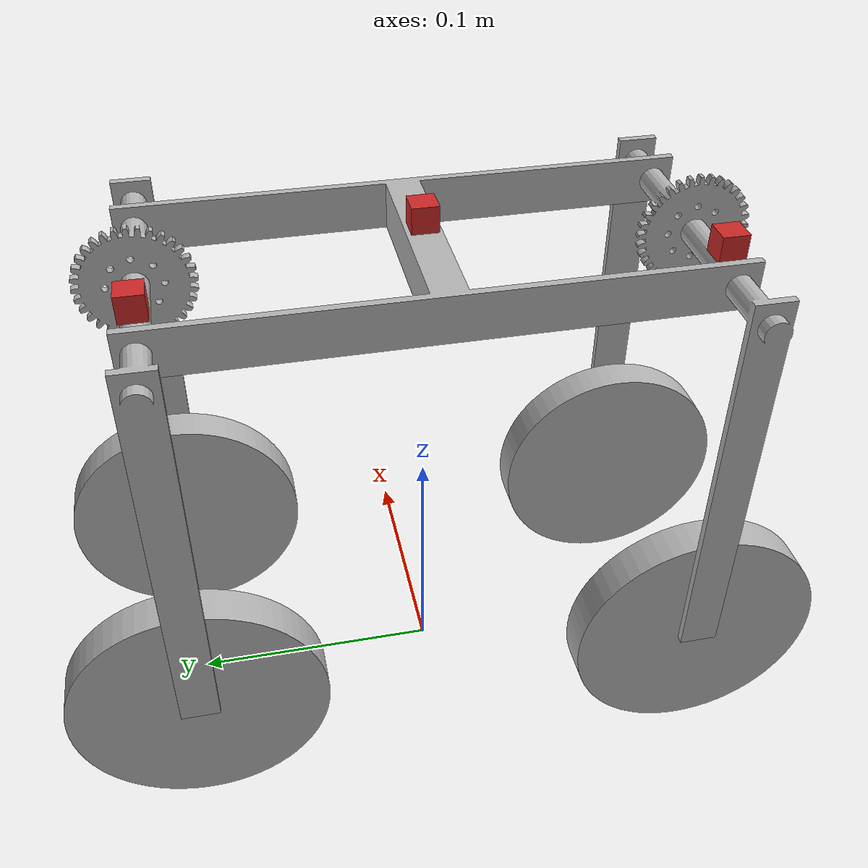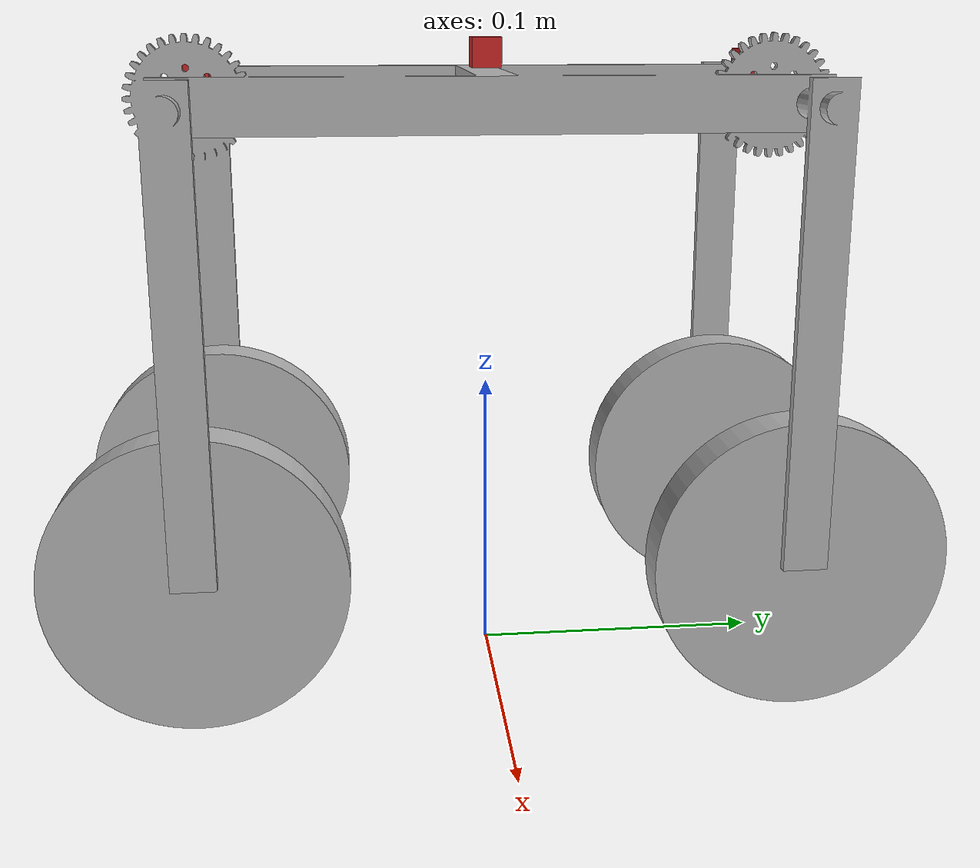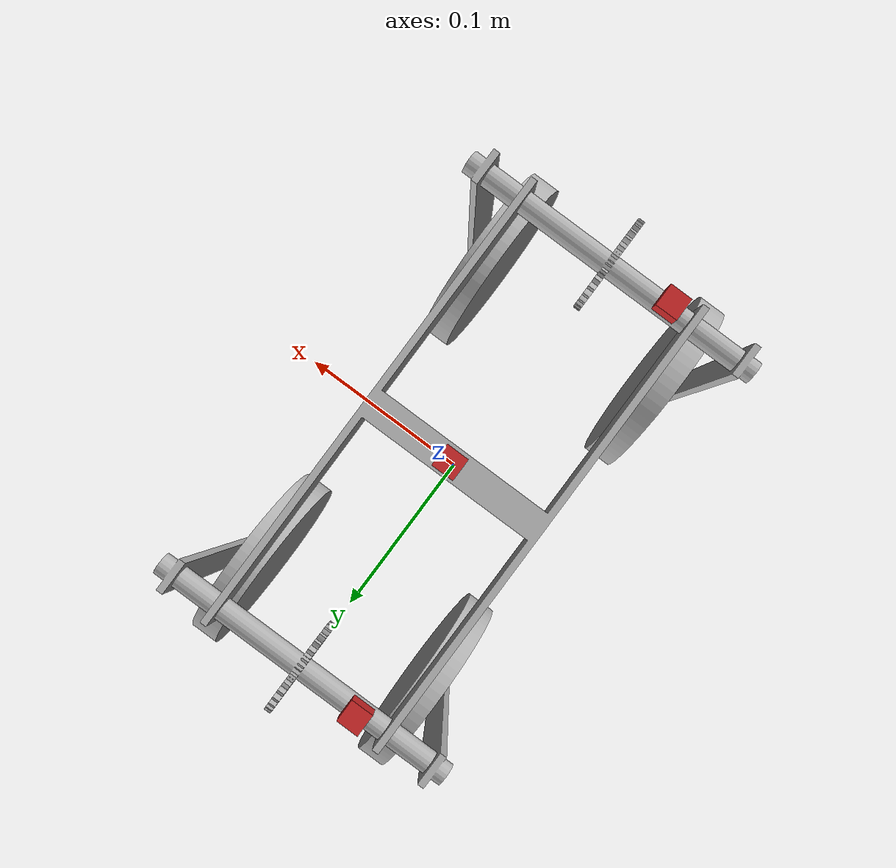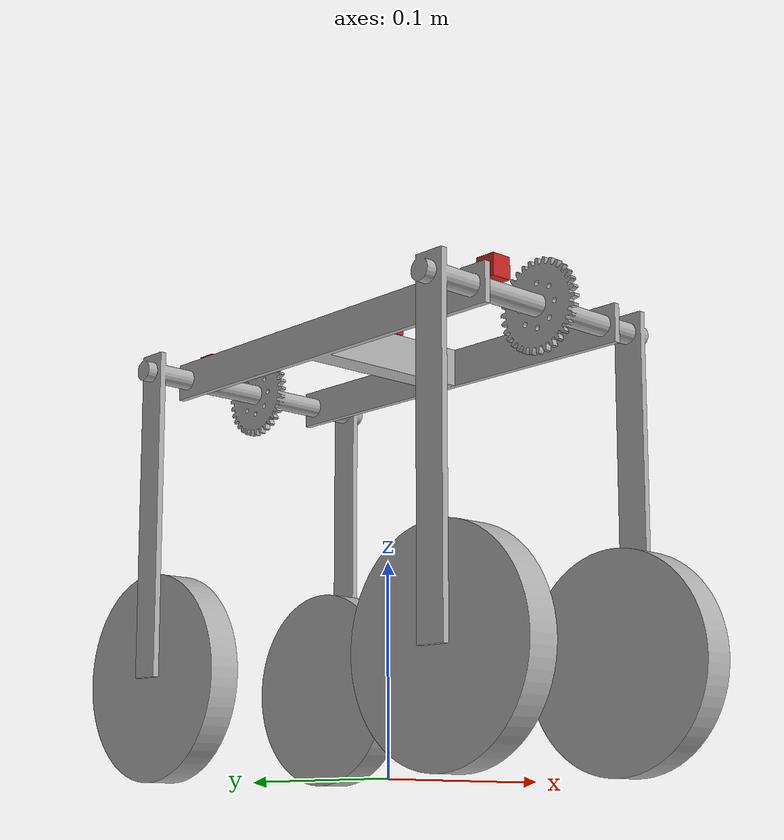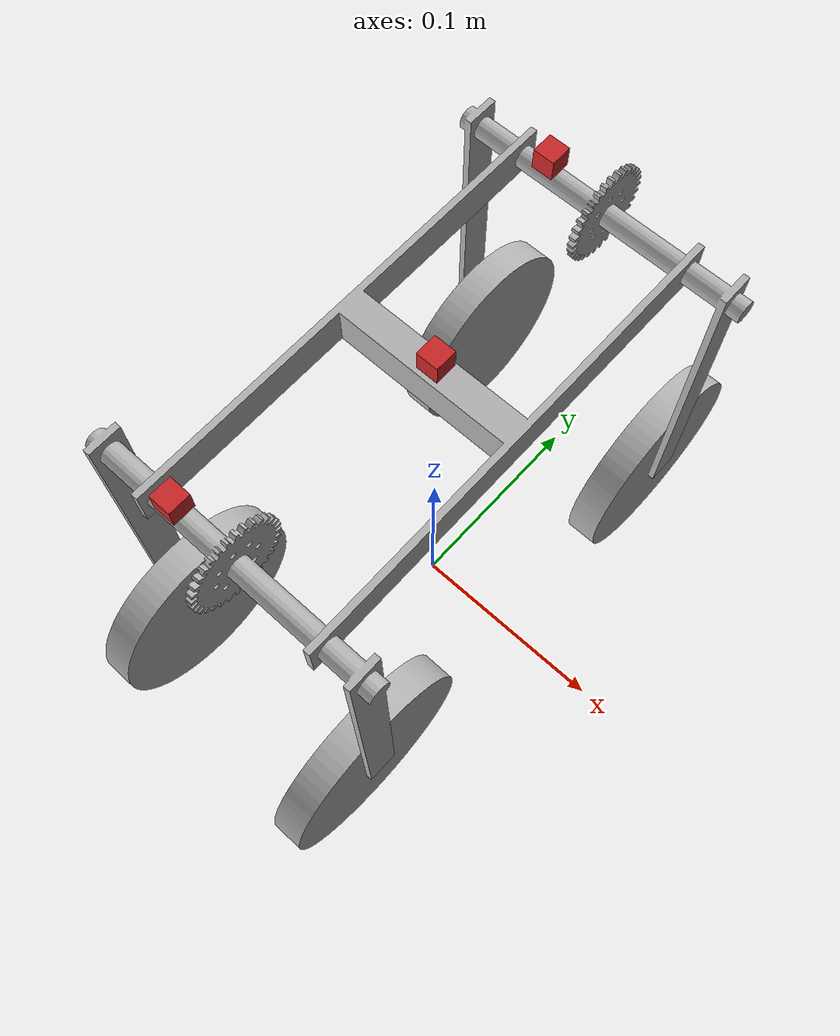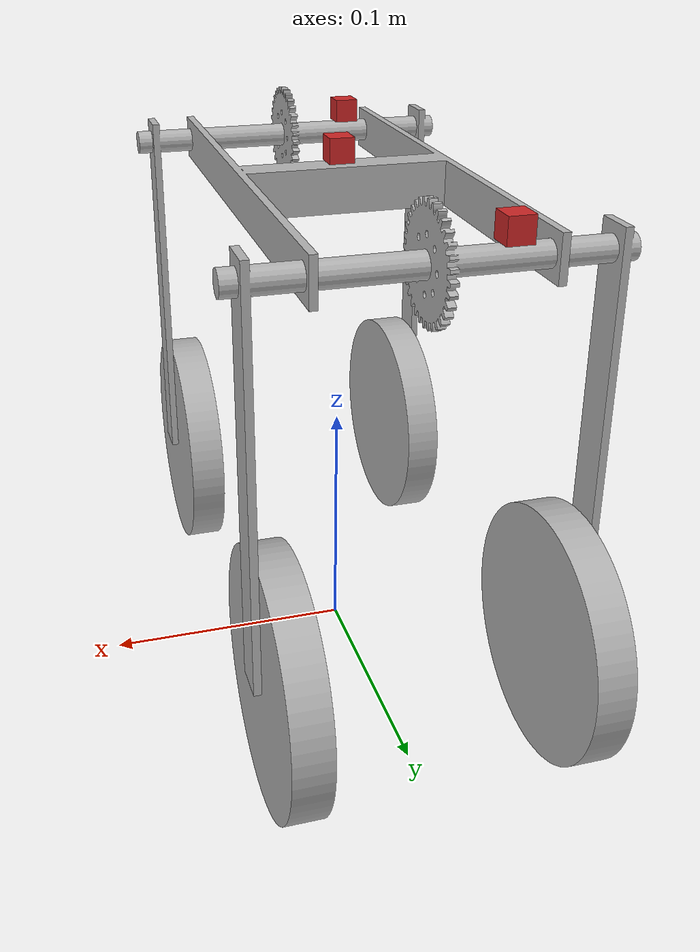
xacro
<?xml version="1.0" ?>
<robot name="terrabot_design4" xmlns:xacro="http://www.ros.org/wiki/xacro">

<xacro:include filename="$(find terrabot_design4_description)/urdf/materials.xacro" />
<xacro:include filename="$(find terrabot_design4_description)/urdf/terrabot_design4.trans" />
<xacro:include filename="$(find terrabot_design4_description)/urdf/terrabot_design4.gazebo" />

<link name="base_link">
  <inertial>
    <origin xyz="-0.002000000000000839 -0.00013843475574249804 0.19998236442836137" rpy="0 0 0"/>
    <mass value="0.048705056378264104"/>
    <inertia ixx="9.7e-05" iyy="5.9e-05" izz="0.000153" ixy="-0.0" iyz="0.0" ixz="0.0"/>
  </inertial>
  <visual>
    <origin xyz="0 0 0" rpy="0 0 0"/>
    <geometry>
      <mesh filename="package://terrabot_design4_description/meshes/base_link.stl" scale="0.001 0.001 0.001"/>
    </geometry>
    <material name="silver"/>
  </visual>
  <collision>
    <origin xyz="0 0 0" rpy="0 0 0"/>
    <geometry>
      <mesh filename="package://terrabot_design4_description/meshes/base_link.stl" scale="0.001 0.001 0.001"/>
    </geometry>
  </collision>
</link>

<link name="wheel3_1">
  <inertial>
    <origin xyz="-0.007499999999999951 8.259963496515255e-08 1.392678549635984e-07" rpy="0 0 0"/>
    <mass value="0.10956304379394403"/>
    <inertia ixx="0.000137" iyy="7.1e-05" izz="7.1e-05" ixy="0.0" iyz="0.0" ixz="0.0"/>
  </inertial>
  <visual>
    <origin xyz="-0.056 0.099795 -0.049" rpy="0 0 0"/>
    <geometry>
      <mesh filename="package://terrabot_design4_description/meshes/wheel3_1.stl" scale="0.001 0.001 0.001"/>
    </geometry>
    <material name="silver"/>
  </visual>
  <collision>
    <origin xyz="-0.056 0.099795 -0.049" rpy="0 0 0"/>
    <geometry>
      <mesh filename="package://terrabot_design4_description/meshes/wheel3_1.stl" scale="0.001 0.001 0.001"/>
    </geometry>
  </collision>
</link>

<link name="wheel2_1">
  <inertial>
    <origin xyz="0.007499999999999979 8.259963550638627e-08 1.3926785466522595e-07" rpy="0 0 0"/>
    <mass value="0.10956304379394405"/>
    <inertia ixx="0.000137" iyy="7.1e-05" izz="7.1e-05" ixy="0.0" iyz="0.0" ixz="0.0"/>
  </inertial>
  <visual>
    <origin xyz="0.067 0.099795 -0.049" rpy="0 0 0"/>
    <geometry>
      <mesh filename="package://terrabot_design4_description/meshes/wheel2_1.stl" scale="0.001 0.001 0.001"/>
    </geometry>
    <material name="silver"/>
  </visual>
  <collision>
    <origin xyz="0.067 0.099795 -0.049" rpy="0 0 0"/>
    <geometry>
      <mesh filename="package://terrabot_design4_description/meshes/wheel2_1.stl" scale="0.001 0.001 0.001"/>
    </geometry>
  </collision>
</link>

<link name="wheel4_1">
  <inertial>
    <origin xyz="-0.007499999999998987 1.9826153256630175e-07 3.4161735154580875e-07" rpy="0 0 0"/>
    <mass value="0.10956304379394403"/>
    <inertia ixx="0.000137" iyy="7.1e-05" izz="7.1e-05" ixy="0.0" iyz="0.0" ixz="0.0"/>
  </inertial>
  <visual>
    <origin xyz="-0.059 -0.100321 -0.049" rpy="0 0 0"/>
    <geometry>
      <mesh filename="package://terrabot_design4_description/meshes/wheel4_1.stl" scale="0.001 0.001 0.001"/>
    </geometry>
    <material name="silver"/>
  </visual>
  <collision>
    <origin xyz="-0.059 -0.100321 -0.049" rpy="0 0 0"/>
    <geometry>
      <mesh filename="package://terrabot_design4_description/meshes/wheel4_1.stl" scale="0.001 0.001 0.001"/>
    </geometry>
  </collision>
</link>

<link name="wheel1_1">
  <inertial>
    <origin xyz="0.007500000000000777 1.9826153252466838e-07 3.416173510253917e-07" rpy="0 0 0"/>
    <mass value="0.10956304379394403"/>
    <inertia ixx="0.000137" iyy="7.1e-05" izz="7.1e-05" ixy="-0.0" iyz="0.0" ixz="0.0"/>
  </inertial>
  <visual>
    <origin xyz="0.064 -0.100321 -0.049" rpy="0 0 0"/>
    <geometry>
      <mesh filename="package://terrabot_design4_description/meshes/wheel1_1.stl" scale="0.001 0.001 0.001"/>
    </geometry>
    <material name="silver"/>
  </visual>
  <collision>
    <origin xyz="0.064 -0.100321 -0.049" rpy="0 0 0"/>
    <geometry>
      <mesh filename="package://terrabot_design4_description/meshes/wheel1_1.stl" scale="0.001 0.001 0.001"/>
    </geometry>
  </collision>
</link>

<link name="gear2_1">
  <inertial>
    <origin xyz="0.03693017933671068 7.887551849927732e-05 -0.036708076296006364" rpy="0 0 0"/>
    <mass value="0.03309757782688206"/>
    <inertia ixx="7.9e-05" iyy="0.000165" izz="8.7e-05" ixy="0.0" iyz="0.0" ixz="-1e-06"/>
  </inertial>
  <visual>
    <origin xyz="0.042 0.1 -0.2" rpy="0 0 0"/>
    <geometry>
      <mesh filename="package://terrabot_design4_description/meshes/gear2_1.stl" scale="0.001 0.001 0.001"/>
    </geometry>
    <material name="silver"/>
  </visual>
  <collision>
    <origin xyz="0.042 0.1 -0.2" rpy="0 0 0"/>
    <geometry>
      <mesh filename="package://terrabot_design4_description/meshes/gear2_1.stl" scale="0.001 0.001 0.001"/>
    </geometry>
  </collision>
</link>

<link name="gear1_1">
  <inertial>
    <origin xyz="-0.04306982066328853 7.806157475943876e-05 -0.03669780485017424" rpy="0 0 0"/>
    <mass value="0.03309757782687909"/>
    <inertia ixx="7.9e-05" iyy="0.000165" izz="8.7e-05" ixy="0.0" iyz="0.0" ixz="-1e-06"/>
  </inertial>
  <visual>
    <origin xyz="-0.041 -0.1 -0.2" rpy="0 0 0"/>
    <geometry>
      <mesh filename="package://terrabot_design4_description/meshes/gear1_1.stl" scale="0.001 0.001 0.001"/>
    </geometry>
    <material name="silver"/>
  </visual>
  <collision>
    <origin xyz="-0.041 -0.1 -0.2" rpy="0 0 0"/>
    <geometry>
      <mesh filename="package://terrabot_design4_description/meshes/gear1_1.stl" scale="0.001 0.001 0.001"/>
    </geometry>
  </collision>
</link>

<!--imu-->
<link name="imu_link_1">
    <collision>
      <origin xyz="0 0 0" rpy="0 0 0"/>
      <geometry>
    <box size="0.01 0.01 0.01"/>
      </geometry>
    </collision>

    <visual>
      <origin xyz="0 0 0" rpy="0 0 0"/>
      <geometry>
    <box size="0.01 0.01 0.01"/>
      </geometry>
      <material name="red"/>
    </visual>

    <inertial>
      <mass value="1e-5" />
      <origin xyz="0 0 0" rpy="0 0 0"/>
      <inertia ixx="1e-6" ixy="0" ixz="0" iyy="1e-6" iyz="0" izz="1e-6" />
    </inertial>
  </link>

  <joint name="imu_joint_1" type="fixed">
    <axis xyz="0 1 0" />
    <origin xyz="0 0 0.215" rpy="0 0 0"/>
    <parent link="base_link"/>
    <child link="imu_link_1"/>
  </joint>

<link name="imu_link_2">
    <collision>
      <origin xyz="0 0 0" rpy="0 0 0"/>
      <geometry>
    <box size="0.01 0.01 0.01"/>
      </geometry>
    </collision>

    <visual>
      <origin xyz="0 0 0" rpy="0 0 0"/>
      <geometry>
    <box size="0.01 0.01 0.01"/>
      </geometry>
      <material name="red"/>
    </visual>

    <inertial>
      <mass value="1e-5" />
      <origin xyz="0 0 0" rpy="0 0 0"/>
      <inertia ixx="1e-6" ixy="0" ixz="0" iyy="1e-6" iyz="0" izz="1e-6" />
    </inertial>
  </link>

  <joint name="imu_joint_2" type="fixed">
    <axis xyz="0 1 0" />
    <origin xyz="0.01 0 0.010" rpy="0 0 0"/>
    <parent link="gear2_1"/>
    <child link="imu_link_2"/>
  </joint>

  <link name="imu_link_3">
    <collision>
      <origin xyz="0 0 0" rpy="0 0 0"/>
      <geometry>
    <box size="0.01 0.01 0.01"/>
      </geometry>
    </collision>

    <visual>
      <origin xyz="0 0 0" rpy="0 0 0"/>
      <geometry>
    <box size="0.01 0.01 0.01"/>
      </geometry>
      <material name="red"/>
    </visual>

    <inertial>
      <mass value="1e-5" />
      <origin xyz="0 0 0" rpy="0 0 0"/>
      <inertia ixx="1e-6" ixy="0" ixz="0" iyy="1e-6" iyz="0" izz="1e-6" />
    </inertial>
  </link>

  <joint name="imu_joint_3" type="fixed">
    <axis xyz="0 1 0" />
    <origin xyz="-0.07 0 0.010" rpy="0 0 0"/>
    <parent link="gear1_1"/>
    <child link="imu_link_3"/>
  </joint>

<joint name="Revolute_55" type="continuous">
  <origin xyz="0.098 0.000205 -0.151" rpy="0 0 0"/>
  <parent link="gear2_1"/>
  <child link="wheel3_1"/>
  <axis xyz="-1.0 0.0 -0.0"/>
</joint>

<joint name="Revolute_56" type="continuous">
  <origin xyz="-0.025 0.000205 -0.151" rpy="0 0 0"/>
  <parent link="gear2_1"/>
  <child link="wheel2_1"/>
  <axis xyz="1.0 -0.0 0.0"/>
</joint>

<joint name="Revolute_57" type="continuous">
  <origin xyz="0.018 0.000321 -0.151" rpy="0 0 0"/>
  <parent link="gear1_1"/>
  <child link="wheel4_1"/>
  <axis xyz="-1.0 0.0 0.0"/>
</joint>

<joint name="Revolute_58" type="continuous">
  <origin xyz="-0.105 0.000321 -0.151" rpy="0 0 0"/>
  <parent link="gear1_1"/>
  <child link="wheel1_1"/>
  <axis xyz="1.0 -0.0 -0.0"/>
</joint>

<joint name="Revolute_59" type="continuous">
  <origin xyz="-0.042 -0.1 0.2" rpy="0 0 0"/>
  <parent link="base_link"/>
  <child link="gear2_1"/>
  <axis xyz="-1.0 0.0 0.0"/>
</joint>

<joint name="Revolute_60" type="continuous">
  <origin xyz="0.041 0.1 0.2" rpy="0 0 0"/>
  <parent link="base_link"/>
  <child link="gear1_1"/>
  <axis xyz="-1.0 0.0 0.0"/>
</joint>

</robot>

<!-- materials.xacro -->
<robot name="terrabot_design4" xmlns:xacro="http://www.ros.org/wiki/xacro" >

<material name="silver">
  <color rgba="0.700 0.700 0.700 1.000"/>
</material>

</robot>

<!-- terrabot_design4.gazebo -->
<robot name="terrabot_design4" xmlns:xacro="http://www.ros.org/wiki/xacro" >

<xacro:property name="body_color" value="Gazebo/Silver" />

<gazebo>
  <plugin name="control" filename="libgazebo_ros_control.so"/>
</gazebo>

<gazebo reference="base_link">
  <material>${body_color}</material>
  <mu1>0.2</mu1>
  <mu2>0.2</mu2>
  <selfCollide>true</selfCollide>
  <gravity>true</gravity>
</gazebo>

<gazebo reference="wheel3_1">
  <material>${body_color}</material>
  <mu1>1.0</mu1>
  <mu2>1.0</mu2>
  <selfCollide>true</selfCollide>
</gazebo>

<gazebo reference="wheel2_1">
  <material>${body_color}</material>
  <mu1>1.0</mu1>
  <mu2>1.0</mu2>
  <selfCollide>true</selfCollide>
</gazebo>

<gazebo reference="wheel4_1">
  <material>${body_color}</material>
  <mu1>1.0</mu1>
  <mu2>1.0</mu2>
  <selfCollide>true</selfCollide>
</gazebo>

<gazebo reference="wheel1_1">
  <material>${body_color}</material>
  <mu1>1.0</mu1>
  <mu2>1.0</mu2>
  <selfCollide>true</selfCollide>
</gazebo>

<gazebo reference="gear2_1">
  <material>${body_color}</material>
  <mu1>0.2</mu1>
  <mu2>0.2</mu2>
  <selfCollide>true</selfCollide>
</gazebo>

<gazebo reference="gear1_1">
  <material>${body_color}</material>
  <mu1>0.2</mu1>
  <mu2>0.2</mu2>
  <selfCollide>true</selfCollide>
</gazebo>

<gazebo reference="imu_link_1">
  <gravity>true</gravity>

  <sensor name="imu_sensor_1" type="imu">
    <always_on>true</always_on>
    <update_rate>10</update_rate>
    <visualize>true</visualize>
    <topic>imu_topic_1</topic>

    <plugin filename="libgazebo_ros_imu_sensor.so" name="imu_plugin">
      <topicName>imu_topic_1</topicName>
      <bodyName>imu_link_1</bodyName>
      <updateRateHZ>10.0</updateRateHZ>
      <gaussianNoise>0.0</gaussianNoise>
      <xyzOffset>0 0 0</xyzOffset>
      <rpyOffset>0 0 0</rpyOffset>
      <frameName>imu_link_1</frameName>
      <initialOrientationAsReference>false</initialOrientationAsReference>
    </plugin>

    <pose>0 0 0 0 0 0</pose>

  </sensor>
</gazebo>

<gazebo reference="imu_link_2">
  <gravity>true</gravity>

  <sensor name="imu_sensor_2" type="imu">
    <always_on>true</always_on>
    <update_rate>10</update_rate>
    <visualize>true</visualize>
    <topic>imu_topic_2</topic>

    <plugin filename="libgazebo_ros_imu_sensor.so" name="imu_plugin">
      <topicName>imu_topic_2</topicName>
      <bodyName>imu_link_2</bodyName>
      <updateRateHZ>10.0</updateRateHZ>
      <gaussianNoise>0.0</gaussianNoise>
      <xyzOffset>0 0 0</xyzOffset>
      <rpyOffset>0 0 0</rpyOffset>
      <frameName>imu_link_2</frameName>
      <initialOrientationAsReference>false</initialOrientationAsReference>
    </plugin>

    <pose>0 0 0 0 0 0</pose>

  </sensor>
</gazebo>

<gazebo reference="imu_link_3">
  <gravity>true</gravity>

  <sensor name="imu_sensor" type="imu">
    <always_on>true</always_on>
    <update_rate>10</update_rate>
    <visualize>true</visualize>
    <topic>imu_topic_3</topic>

    <plugin filename="libgazebo_ros_imu_sensor.so" name="imu_plugin">
      <topicName>imu_topic_3</topicName>
      <bodyName>imu_link_3</bodyName>
      <updateRateHZ>10.0</updateRateHZ>
      <gaussianNoise>0.0</gaussianNoise>
      <xyzOffset>0 0 0</xyzOffset>
      <rpyOffset>0 0 0</rpyOffset>
      <frameName>imu_link_3</frameName>
      <initialOrientationAsReference>false</initialOrientationAsReference>
    </plugin>

    <pose>0 0 0 0 0 0</pose>

  </sensor>
</gazebo>

</robot>
